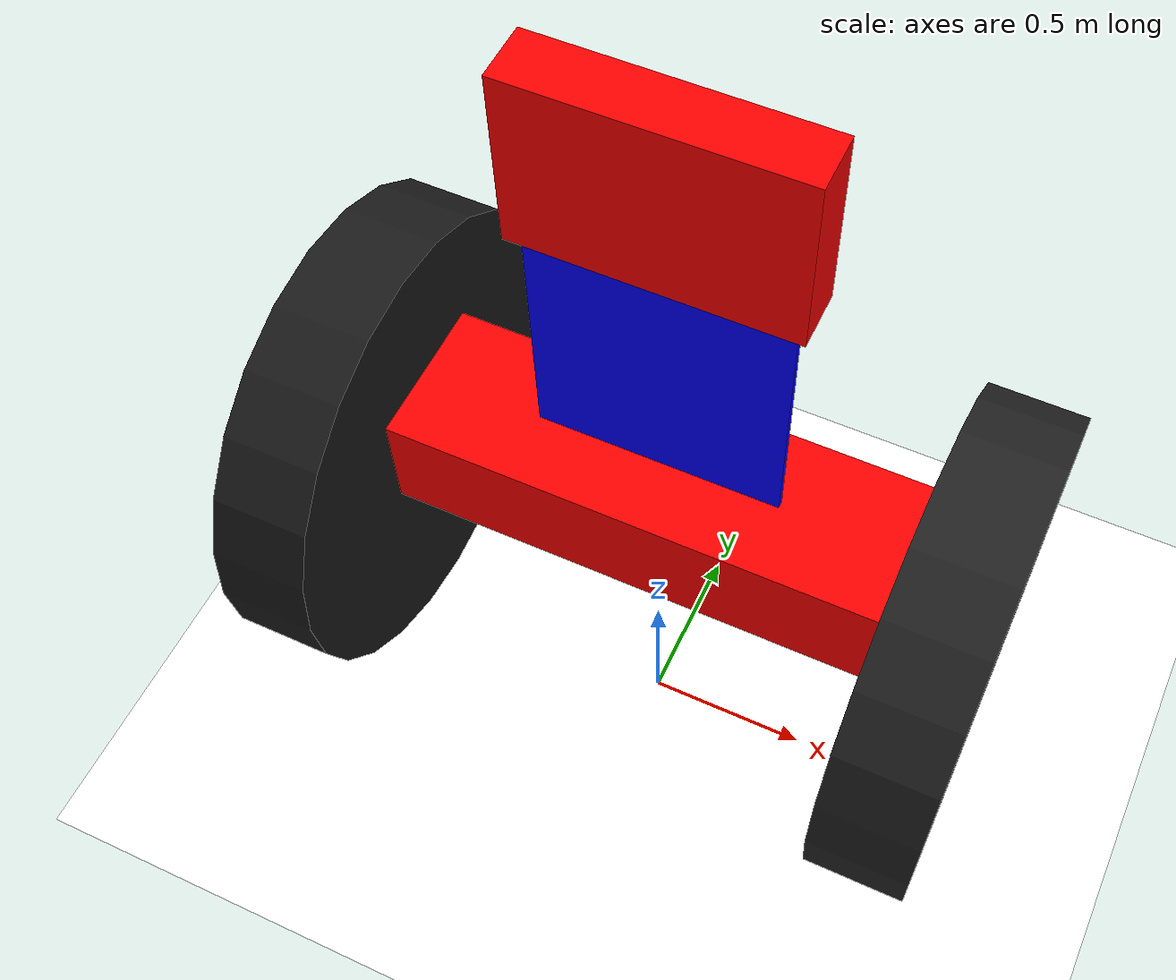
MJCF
<mujoco>
   <worldbody>
      <light diffuse=".5 .5 .5" pos="0 0 3" dir="0 0 -1"/>
      <geom type="plane" size="5 5 0.1" rgba="128 255 225 0.75"/>
      <body euler="0 0 90"  pos="0 0 1">
      	<joint type="free"/>
      	<geom type="box" size=".22 .71 .16" pos="0 0 0.19" rgba="1 0 0 1"/>    //Base Frame
        <geom type="box" size=".01 .35 .65" pos="0 0 0.93" rgba="0 0 1 1"/>        //PCB
        <geom type="box" size=".08 0.38 .25" pos="0.034 0 1.34" rgba="1 0 0 1"/> 	//Battery holder
        <site type="box" size="0.01 .01 .01" pos="0 0 0.1" rgba=".9 .1 .9 1" name="IMU"/>  //Sensor
        <body pos="0 0 0">
      		  <joint axis="0 1 0" name="lmotor" pos="0 -0.87 0" range="-.52 1.05" damping="2" type="hinge"/>//stiffness="240" type="hinge"/>
      	  	<geom type="cylinder" euler="90 0 0" size=".7 .14 " pos="0 -0.87 0" rgba="0.128 0.128 0.128 1"/>
      	</body>
      	<body pos="0 0 0">
		        <joint axis="0 -1 0" name="rmotor" pos="0 0.87 0" range="-.52 1.05" damping="2" type="hinge"/>//stiffness="240" type="hinge"/>
            <geom type="cylinder" euler="90 0 0" size=".7 .14 " pos="0 0.87 0" rgba="0.100 0.100 0.100 1"/>
      	</body>
      </body>
    </worldbody>
    <sensor>
          <accelerometer name="Acc" site="IMU" />
          <gyro name="Gyro" site="IMU" />
	        <jointpos name="Lencoder" joint="lmotor"/>
	        <jointpos name="Rencoder" joint="rmotor"/>
    </sensor>
    <actuator>
    	<motor  joint="lmotor" name="almotor"/>// gaintype="user" gainrpm="1 0 0"name="almotor"/>
   	  <motor  joint="rmotor" name="armotor"/>
    </actuator>
</mujoco>
